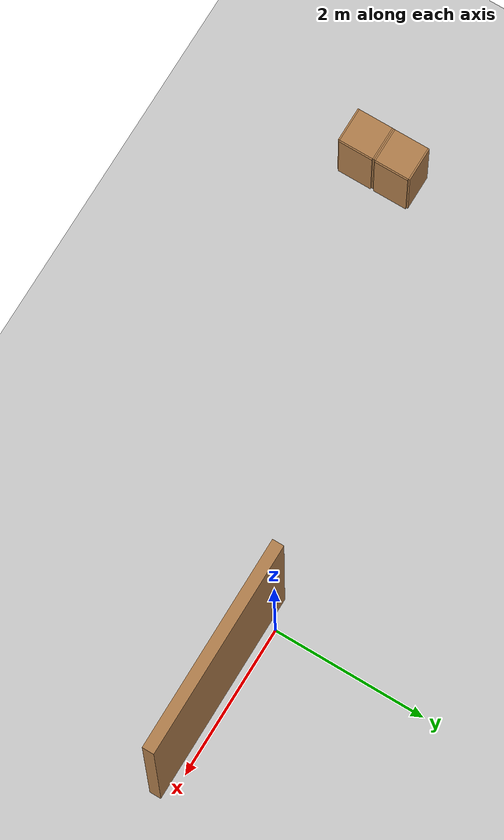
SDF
<sdf version="1.7">
 <world name="simple_house">
  <model name="ground_plane">
   <static>1</static>
   <link name="link">
    <collision name="collision">
     <geometry><plane><normal>0 0 1</normal><size>100 100</size></plane></geometry>
     <surface><friction><ode><mu>100</mu><mu2>50</mu2></ode></friction></surface>
    </collision>
    <visual name="visual">
     <cast_shadows>0</cast_shadows>
     <geometry><plane><normal>0 0 1</normal><size>100 100</size></plane></geometry>
     <material>
      <script><uri>file://media/materials/scripts/gazebo.material</uri><name>Gazebo/Grey</name></script>
     </material>
    </visual>
   </link>
  </model>
  <model name="cabinet">
   <static>1</static>
   <link name="cabinet_bottom_plate">
    <inertial>
     <pose>0 0 -1 0 -0 0</pose>
     <inertia><ixx>2.05</ixx><ixy>0</ixy><ixz>0</ixz><iyy>2.05</iyy><iyz>0</iyz><izz>2.05</izz></inertia>
     <mass>25</mass>
    </inertial>
    <collision name="cabinet_bottom_plate_geom">
     <pose>0 0 0.01 0 -0 0</pose>
     <geometry><box><size>0.45 0.45 0.02</size></box></geometry>
    </collision>
    <visual name="cabinet_bottom_plate_geom_visual">
     <pose>0 0 0.01 0 -0 0</pose>
     <geometry><box><size>0.45 0.45 0.02</size></box></geometry>
     <material>
      <script><uri>file://media/materials/scripts/gazebo.material</uri><name>Gazebo/Wood</name></script>
     </material>
    </visual>
    <collision name="cabinet_bottom_plate_geom_cabinet_back_plate">
     <pose>0.235 0 0.51 0 -0 0</pose>
     <geometry><box><size>0.02 0.45 1.02</size></box></geometry>
    </collision>
    <visual name="cabinet_bottom_plate_geom_cabinet_back_plate_visual">
     <pose>0.235 0 0.51 0 -0 0</pose>
     <geometry><box><size>0.02 0.45 1.02</size></box></geometry>
     <material>
      <script><uri>file://media/materials/scripts/gazebo.material</uri><name>Gazebo/Wood</name></script>
     </material>
    </visual>
    <collision name="cabinet_bottom_plate_geom_cabinet_left_plate">
     <pose>0 0.235 0.51 0 -0 0</pose>
     <geometry><box><size>0.45 0.02 1.02</size></box></geometry>
    </collision>
    <visual name="cabinet_bottom_plate_geom_cabinet_left_plate_visual">
     <pose>0 0.235 0.51 0 -0 0</pose>
     <geometry><box><size>0.45 0.02 1.02</size></box></geometry>
     <material>
      <script><uri>file://media/materials/scripts/gazebo.material</uri><name>Gazebo/Wood</name></script>
     </material>
    </visual>
    <collision name="cabinet_bottom_plate_geom_cabinet_middle_plate">
     <pose>0 0 0.51 0 -0 0</pose>
     <geometry><box><size>0.45 0.45 0.02</size></box></geometry>
    </collision>
    <visual name="cabinet_bottom_plate_geom_cabinet_middle_plate_visual">
     <pose>0 0 0.51 0 -0 0</pose>
     <geometry><box><size>0.45 0.45 0.02</size></box></geometry>
     <material>
      <script><uri>file://media/materials/scripts/gazebo.material</uri><name>Gazebo/Wood</name></script>
     </material>
    </visual>
    <collision name="cabinet_bottom_plate_geom_cabinet_right_plate">
     <pose>0 -0.235 0.51 0 -0 0</pose>
     <geometry><box><size>0.45 0.02 1.02</size></box></geometry>
    </collision>
    <visual name="cabinet_bottom_plate_geom_cabinet_right_plate_visual">
     <pose>0 -0.235 0.51 0 -0 0</pose>
     <geometry><box><size>0.45 0.02 1.02</size></box></geometry>
     <material>
      <script><uri>file://media/materials/scripts/gazebo.material</uri><name>Gazebo/Wood</name></script>
     </material>
    </visual>
    <collision name="cabinet_bottom_plate_geom_cabinet_top_plate">
     <pose>0 0 1.01 0 -0 0</pose>
     <geometry><box><size>0.45 0.45 0.02</size></box></geometry>
    </collision>
    <visual name="cabinet_bottom_plate_geom_cabinet_top_plate_visual">
     <pose>0 0 1.01 0 -0 0</pose>
     <geometry><box><size>0.45 0.45 0.02</size></box></geometry>
     <material>
      <script><uri>file://media/materials/scripts/gazebo.material</uri><name>Gazebo/Wood</name></script>
     </material>
    </visual>
   </link>
   <pose>-5.472 -1.57624 0 0 -0 0</pose>
  </model>
  <model name="cabinet_0">
   <static>1</static>
   <link name="cabinet_bottom_plate">
    <inertial>
     <pose>0 0 -1 0 -0 0</pose>
     <inertia><ixx>2.05</ixx><ixy>0</ixy><ixz>0</ixz><iyy>2.05</iyy><iyz>0</iyz><izz>2.05</izz></inertia>
     <mass>25</mass>
    </inertial>
    <collision name="cabinet_bottom_plate_geom">
     <pose>0 0 0.01 0 -0 0</pose>
     <geometry><box><size>0.45 0.45 0.02</size></box></geometry>
    </collision>
    <visual name="cabinet_bottom_plate_geom_visual">
     <pose>0 0 0.01 0 -0 0</pose>
     <geometry><box><size>0.45 0.45 0.02</size></box></geometry>
     <material>
      <script><uri>file://media/materials/scripts/gazebo.material</uri><name>Gazebo/Wood</name></script>
     </material>
    </visual>
    <collision name="cabinet_bottom_plate_geom_cabinet_back_plate">
     <pose>0.235 0 0.51 0 -0 0</pose>
     <geometry><box><size>0.02 0.45 1.02</size></box></geometry>
    </collision>
    <visual name="cabinet_bottom_plate_geom_cabinet_back_plate_visual">
     <pose>0.235 0 0.51 0 -0 0</pose>
     <geometry><box><size>0.02 0.45 1.02</size></box></geometry>
     <material>
      <script><uri>file://media/materials/scripts/gazebo.material</uri><name>Gazebo/Wood</name></script>
     </material>
    </visual>
    <collision name="cabinet_bottom_plate_geom_cabinet_left_plate">
     <pose>0 0.235 0.51 0 -0 0</pose>
     <geometry><box><size>0.45 0.02 1.02</size></box></geometry>
    </collision>
    <visual name="cabinet_bottom_plate_geom_cabinet_left_plate_visual">
     <pose>0 0.235 0.51 0 -0 0</pose>
     <geometry><box><size>0.45 0.02 1.02</size></box></geometry>
     <material>
      <script><uri>file://media/materials/scripts/gazebo.material</uri><name>Gazebo/Wood</name></script>
     </material>
    </visual>
    <collision name="cabinet_bottom_plate_geom_cabinet_middle_plate">
     <pose>0 0 0.51 0 -0 0</pose>
     <geometry><box><size>0.45 0.45 0.02</size></box></geometry>
    </collision>
    <visual name="cabinet_bottom_plate_geom_cabinet_middle_plate_visual">
     <pose>0 0 0.51 0 -0 0</pose>
     <geometry><box><size>0.45 0.45 0.02</size></box></geometry>
     <material>
      <script><uri>file://media/materials/scripts/gazebo.material</uri><name>Gazebo/Wood</name></script>
     </material>
    </visual>
    <collision name="cabinet_bottom_plate_geom_cabinet_right_plate">
     <pose>0 -0.235 0.51 0 -0 0</pose>
     <geometry><box><size>0.45 0.02 1.02</size></box></geometry>
    </collision>
    <visual name="cabinet_bottom_plate_geom_cabinet_right_plate_visual">
     <pose>0 -0.235 0.51 0 -0 0</pose>
     <geometry><box><size>0.45 0.02 1.02</size></box></geometry>
     <material>
      <script><uri>file://media/materials/scripts/gazebo.material</uri><name>Gazebo/Wood</name></script>
     </material>
    </visual>
    <collision name="cabinet_bottom_plate_geom_cabinet_top_plate">
     <pose>0 0 1.01 0 -0 0</pose>
     <geometry><box><size>0.45 0.45 0.02</size></box></geometry>
    </collision>
    <visual name="cabinet_bottom_plate_geom_cabinet_top_plate_visual">
     <pose>0 0 1.01 0 -0 0</pose>
     <geometry><box><size>0.45 0.45 0.02</size></box></geometry>
     <material>
      <script><uri>file://media/materials/scripts/gazebo.material</uri><name>Gazebo/Wood</name></script>
     </material>
    </visual>
   </link>
   <pose>-5.47289 -2.06545 0 0 -0 0</pose>
  </model>
  <model name="Wall_82_clone">
   <static>1</static>
   <link name="Wall_82_link">
    <pose>1.25 5.26876 0 0 -0 3.14159</pose>
    <visual name="Wall_82_Visual">
     <pose>0 0 1.25 0 -0 0</pose>
     <geometry><box><size>2.75 0.15 2.5</size></box></geometry>
     <material>
      <script><uri>file://media/materials/scripts/gazebo.material</uri><name>Gazebo/Wood</name></script>
      <ambient>1 1 1 1</ambient>
      <diffuse>1 1 1 1</diffuse>
      <specular>0.2 0.2 0.2 1</specular>
      <emissive>0 0 0 1</emissive>
     </material>
    </visual>
    <collision name="Wall_82_Collision">
     <pose>0 0 1.25 0 -0 0</pose>
     <geometry><box><size>2.75 0.15 2.5</size></box></geometry>
     <surface>
      <friction>
       <ode><mu>1</mu><mu2>1</mu2><fdir1>0 0 0</fdir1><slip1>0</slip1><slip2>0</slip2></ode>
       <torsional>
        <coefficient>1</coefficient>
        <patch_radius>0</patch_radius>
        <surface_radius>0</surface_radius>
        <use_patch_radius>1</use_patch_radius>
        <ode><slip>0</slip></ode>
       </torsional>
      </friction>
      <bounce><restitution_coefficient>0</restitution_coefficient><threshold>1e+06</threshold></bounce>
      <contact>
       <collide_without_contact>0</collide_without_contact>
       <collide_without_contact_bitmask>1</collide_without_contact_bitmask>
       <collide_bitmask>1</collide_bitmask>
       <ode>
        <soft_cfm>0</soft_cfm>
        <soft_erp>0.2</soft_erp>
        <kp>1e+13</kp>
        <kd>1</kd>
        <max_vel>0.01</max_vel>
        <min_depth>0</min_depth>
       </ode>
       <bullet>
        <split_impulse>1</split_impulse>
        <split_impulse_penetration_threshold>-0.01</split_impulse_penetration_threshold>
        <soft_cfm>0</soft_cfm>
        <soft_erp>0.2</soft_erp>
        <kp>1e+13</kp>
        <kd>1</kd>
       </bullet>
      </contact>
     </surface>
    </collision>
   </link>
   <pose>-0.24812 -5.43976 0 0 -0 0</pose>
  </model>
 </world>
</sdf>
